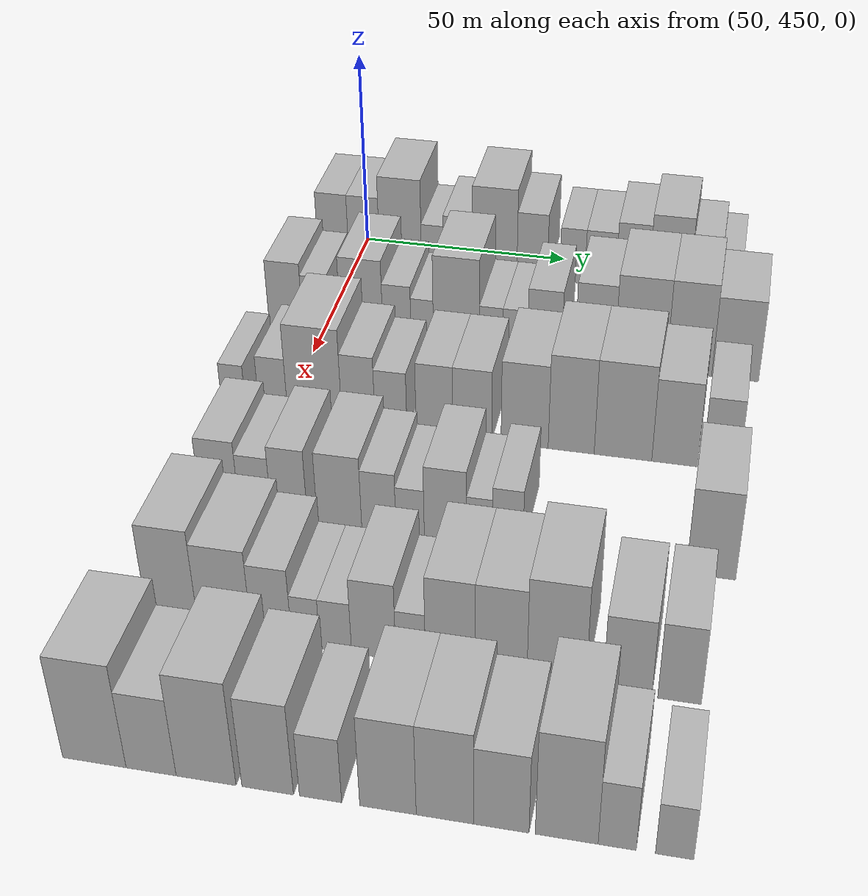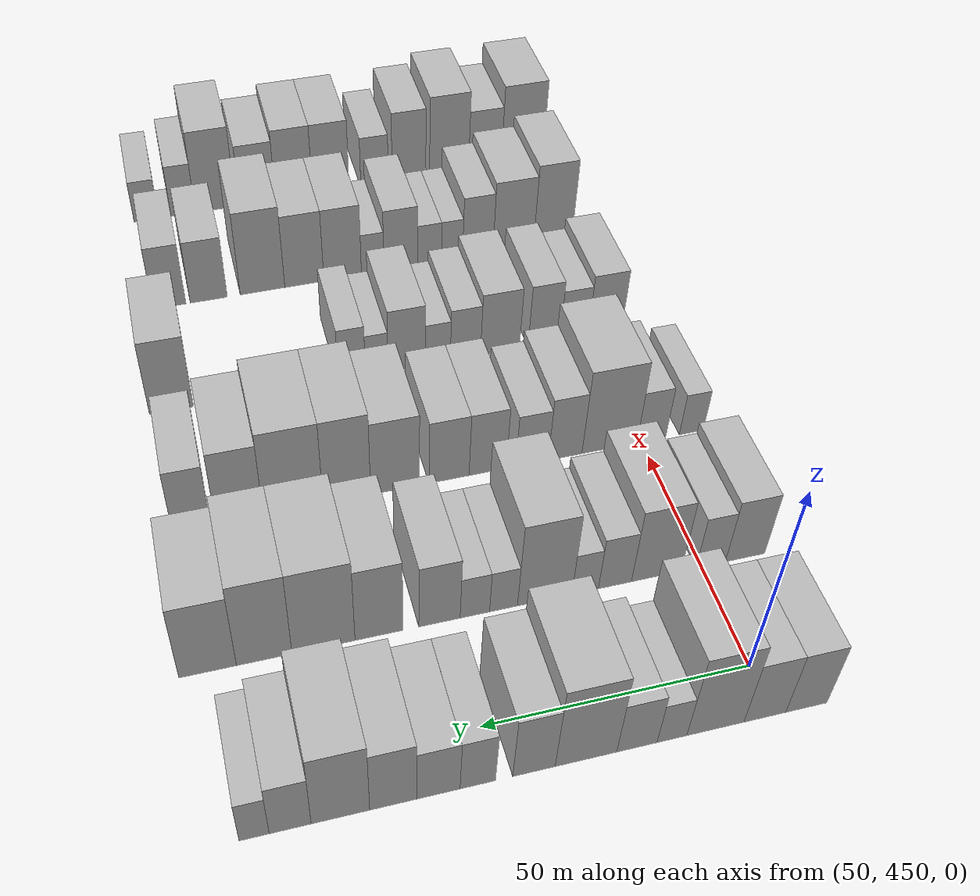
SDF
<sdf version="1.6">
 <world name="default">
  <model name="building_98">
   <static>1</static>
   <pose>50.0000 443.8086 0 0.000000 0.000000 0.000000</pose>
   <link name="link">
    <pose>0 0 9.00 0 0 0</pose>
    <collision name="collision"><geometry><box><size>20.0000 7.8256 18.0000</size></box></geometry></collision>
    <visual name="visual">
     <cast_shadows>0</cast_shadows>
     <geometry><box><size>20.0000 7.8256 18.0000</size></box></geometry>
     <material>
      <script>
       <uri>model://HANNAS_wall/materials/scripts</uri>
       <uri>model://HANNAS_wall/materials/textures</uri>
       <name>vrc/HANNAS_wall</name>
      </script>
     </material>
    </visual>
   </link>
  </model>
  <model name="building_99">
   <static>1</static>
   <pose>50.0000 451.6494 0 0.000000 0.000000 0.000000</pose>
   <link name="link">
    <pose>0 0 9.00 0 0 0</pose>
    <collision name="collision"><geometry><box><size>20.0000 7.8559 18.0000</size></box></geometry></collision>
    <visual name="visual">
     <cast_shadows>0</cast_shadows>
     <geometry><box><size>20.0000 7.8559 18.0000</size></box></geometry>
     <material>
      <script>
       <uri>model://HANNAS_wall/materials/scripts</uri>
       <uri>model://HANNAS_wall/materials/textures</uri>
       <name>vrc/HANNAS_wall</name>
      </script>
     </material>
    </visual>
   </link>
  </model>
  <model name="building_100">
   <static>1</static>
   <pose>50.0000 460.8512 0 0.000000 0.000000 0.000000</pose>
   <link name="link">
    <pose>0 0 12.00 0 0 0</pose>
    <collision name="collision"><geometry><box><size>20.0000 10.5478 24.0000</size></box></geometry></collision>
    <visual name="visual">
     <cast_shadows>0</cast_shadows>
     <geometry><box><size>20.0000 10.5478 24.0000</size></box></geometry>
     <material>
      <script>
       <uri>model://HANNAS_wall/materials/scripts</uri>
       <uri>model://HANNAS_wall/materials/textures</uri>
       <name>vrc/HANNAS_wall</name>
      </script>
     </material>
    </visual>
   </link>
  </model>
  <model name="building_101">
   <static>1</static>
   <pose>50.0000 468.8433 0 0.000000 0.000000 0.000000</pose>
   <link name="link">
    <pose>0 0 6.00 0 0 0</pose>
    <collision name="collision"><geometry><box><size>20.0000 5.4364 12.0000</size></box></geometry></collision>
    <visual name="visual">
     <cast_shadows>0</cast_shadows>
     <geometry><box><size>20.0000 5.4364 12.0000</size></box></geometry>
     <material>
      <script>
       <uri>model://HANNAS_wall/materials/scripts</uri>
       <uri>model://HANNAS_wall/materials/textures</uri>
       <name>vrc/HANNAS_wall</name>
      </script>
     </material>
    </visual>
   </link>
  </model>
  <model name="building_102">
   <static>1</static>
   <pose>50.0000 475.1970 0 0.000000 0.000000 0.000000</pose>
   <link name="link">
    <pose>0 0 7.50 0 0 0</pose>
    <collision name="collision"><geometry><box><size>20.0000 7.2709 15.0000</size></box></geometry></collision>
    <visual name="visual">
     <cast_shadows>0</cast_shadows>
     <geometry><box><size>20.0000 7.2709 15.0000</size></box></geometry>
     <material>
      <script>
       <uri>model://HANNAS_wall/materials/scripts</uri>
       <uri>model://HANNAS_wall/materials/textures</uri>
       <name>vrc/HANNAS_wall</name>
      </script>
     </material>
    </visual>
   </link>
  </model>
  <model name="building_103">
   <static>1</static>
   <pose>50.0000 484.3260 0 0.000000 0.000000 0.000000</pose>
   <link name="link">
    <pose>0 0 12.00 0 0 0</pose>
    <collision name="collision"><geometry><box><size>20.0000 10.9872 24.0000</size></box></geometry></collision>
    <visual name="visual">
     <cast_shadows>0</cast_shadows>
     <geometry><box><size>20.0000 10.9872 24.0000</size></box></geometry>
     <material>
      <script>
       <uri>model://HANNAS_wall/materials/scripts</uri>
       <uri>model://HANNAS_wall/materials/textures</uri>
       <name>vrc/HANNAS_wall</name>
      </script>
     </material>
    </visual>
   </link>
  </model>
  <model name="building_104">
   <static>1</static>
   <pose>50.0000 493.5575 0 0.000000 0.000000 0.000000</pose>
   <link name="link">
    <pose>0 0 9.00 0 0 0</pose>
    <collision name="collision"><geometry><box><size>20.0000 7.4757 18.0000</size></box></geometry></collision>
    <visual name="visual">
     <cast_shadows>0</cast_shadows>
     <geometry><box><size>20.0000 7.4757 18.0000</size></box></geometry>
     <material>
      <script>
       <uri>model://HANNAS_wall/materials/scripts</uri>
       <uri>model://HANNAS_wall/materials/textures</uri>
       <name>vrc/HANNAS_wall</name>
      </script>
     </material>
    </visual>
   </link>
  </model>
  <model name="building_105">
   <static>1</static>
   <pose>50.0000 503.3696 0 0.000000 0.000000 0.000000</pose>
   <link name="link">
    <pose>0 0 7.50 0 0 0</pose>
    <collision name="collision"><geometry><box><size>20.0000 6.1486 15.0000</size></box></geometry></collision>
    <visual name="visual">
     <cast_shadows>0</cast_shadows>
     <geometry><box><size>20.0000 6.1486 15.0000</size></box></geometry>
     <material>
      <script>
       <uri>model://HANNAS_wall/materials/scripts</uri>
       <uri>model://HANNAS_wall/materials/textures</uri>
       <name>vrc/HANNAS_wall</name>
      </script>
     </material>
    </visual>
   </link>
  </model>
  <model name="building_106">
   <static>1</static>
   <pose>50.0000 510.1743 0 0.000000 0.000000 0.000000</pose>
   <link name="link">
    <pose>0 0 7.50 0 0 0</pose>
    <collision name="collision"><geometry><box><size>20.0000 7.4607 15.0000</size></box></geometry></collision>
    <visual name="visual">
     <cast_shadows>0</cast_shadows>
     <geometry><box><size>20.0000 7.4607 15.0000</size></box></geometry>
     <material>
      <script>
       <uri>model://HANNAS_wall/materials/scripts</uri>
       <uri>model://HANNAS_wall/materials/textures</uri>
       <name>vrc/HANNAS_wall</name>
      </script>
     </material>
    </visual>
   </link>
  </model>
  <model name="building_107">
   <static>1</static>
   <pose>50.0000 517.8721 0 0.000000 0.000000 0.000000</pose>
   <link name="link">
    <pose>0 0 9.00 0 0 0</pose>
    <collision name="collision"><geometry><box><size>20.0000 7.9349 18.0000</size></box></geometry></collision>
    <visual name="visual">
     <cast_shadows>0</cast_shadows>
     <geometry><box><size>20.0000 7.9349 18.0000</size></box></geometry>
     <material>
      <script>
       <uri>model://HANNAS_wall/materials/scripts</uri>
       <uri>model://HANNAS_wall/materials/textures</uri>
       <name>vrc/HANNAS_wall</name>
      </script>
     </material>
    </visual>
   </link>
  </model>
  <model name="building_108">
   <static>1</static>
   <pose>50.0000 526.7325 0 0.000000 0.000000 0.000000</pose>
   <link name="link">
    <pose>0 0 10.50 0 0 0</pose>
    <collision name="collision"><geometry><box><size>20.0000 9.7859 21.0000</size></box></geometry></collision>
    <visual name="visual">
     <cast_shadows>0</cast_shadows>
     <geometry><box><size>20.0000 9.7859 21.0000</size></box></geometry>
     <material>
      <script>
       <uri>model://HANNAS_wall/materials/scripts</uri>
       <uri>model://HANNAS_wall/materials/textures</uri>
       <name>vrc/HANNAS_wall</name>
      </script>
     </material>
    </visual>
   </link>
  </model>
  <model name="building_109">
   <static>1</static>
   <pose>50.0000 535.0916 0 0.000000 0.000000 0.000000</pose>
   <link name="link">
    <pose>0 0 7.50 0 0 0</pose>
    <collision name="collision"><geometry><box><size>20.0000 6.9322 15.0000</size></box></geometry></collision>
    <visual name="visual">
     <cast_shadows>0</cast_shadows>
     <geometry><box><size>20.0000 6.9322 15.0000</size></box></geometry>
     <material>
      <script>
       <uri>model://HANNAS_wall/materials/scripts</uri>
       <uri>model://HANNAS_wall/materials/textures</uri>
       <name>vrc/HANNAS_wall</name>
      </script>
     </material>
    </visual>
   </link>
  </model>
  <model name="building_110">
   <static>1</static>
   <pose>50.0000 541.0189 0 0.000000 0.000000 0.000000</pose>
   <link name="link">
    <pose>0 0 6.00 0 0 0</pose>
    <collision name="collision"><geometry><box><size>20.0000 4.9223 12.0000</size></box></geometry></collision>
    <visual name="visual">
     <cast_shadows>0</cast_shadows>
     <geometry><box><size>20.0000 4.9223 12.0000</size></box></geometry>
     <material>
      <script>
       <uri>model://HANNAS_wall/materials/scripts</uri>
       <uri>model://HANNAS_wall/materials/textures</uri>
       <name>vrc/HANNAS_wall</name>
      </script>
     </material>
    </visual>
   </link>
  </model>
  <model name="building_215">
   <static>1</static>
   <pose>82.0000 441.1507 0 0.000000 0.000000 0.000000</pose>
   <link name="link">
    <pose>0 0 9.00 0 0 0</pose>
    <collision name="collision"><geometry><box><size>20.0000 8.0968 18.0000</size></box></geometry></collision>
    <visual name="visual">
     <cast_shadows>0</cast_shadows>
     <geometry><box><size>20.0000 8.0968 18.0000</size></box></geometry>
     <material>
      <script>
       <uri>model://HANNAS_wall/materials/scripts</uri>
       <uri>model://HANNAS_wall/materials/textures</uri>
       <name>vrc/HANNAS_wall</name>
      </script>
     </material>
    </visual>
   </link>
  </model>
  <model name="building_216">
   <static>1</static>
   <pose>82.0000 448.2064 0 0.000000 0.000000 0.000000</pose>
   <link name="link">
    <pose>0 0 7.50 0 0 0</pose>
    <collision name="collision"><geometry><box><size>20.0000 6.0147 15.0000</size></box></geometry></collision>
    <visual name="visual">
     <cast_shadows>0</cast_shadows>
     <geometry><box><size>20.0000 6.0147 15.0000</size></box></geometry>
     <material>
      <script>
       <uri>model://HANNAS_wall/materials/scripts</uri>
       <uri>model://HANNAS_wall/materials/textures</uri>
       <name>vrc/HANNAS_wall</name>
      </script>
     </material>
    </visual>
   </link>
  </model>
  <model name="building_217">
   <static>1</static>
   <pose>82.0000 459.2200 0 0.000000 0.000000 0.000000</pose>
   <link name="link">
    <pose>0 0 10.50 0 0 0</pose>
    <collision name="collision"><geometry><box><size>20.0000 10.0124 21.0000</size></box></geometry></collision>
    <visual name="visual">
     <cast_shadows>0</cast_shadows>
     <geometry><box><size>20.0000 10.0124 21.0000</size></box></geometry>
     <material>
      <script>
       <uri>model://HANNAS_wall/materials/scripts</uri>
       <uri>model://HANNAS_wall/materials/textures</uri>
       <name>vrc/HANNAS_wall</name>
      </script>
     </material>
    </visual>
   </link>
  </model>
  <model name="building_218">
   <static>1</static>
   <pose>82.0000 467.5190 0 0.000000 0.000000 0.000000</pose>
   <link name="link">
    <pose>0 0 7.50 0 0 0</pose>
    <collision name="collision"><geometry><box><size>20.0000 6.5856 15.0000</size></box></geometry></collision>
    <visual name="visual">
     <cast_shadows>0</cast_shadows>
     <geometry><box><size>20.0000 6.5856 15.0000</size></box></geometry>
     <material>
      <script>
       <uri>model://HANNAS_wall/materials/scripts</uri>
       <uri>model://HANNAS_wall/materials/textures</uri>
       <name>vrc/HANNAS_wall</name>
      </script>
     </material>
    </visual>
   </link>
  </model>
  <model name="building_219">
   <static>1</static>
   <pose>82.0000 473.4227 0 0.000000 0.000000 0.000000</pose>
   <link name="link">
    <pose>0 0 6.00 0 0 0</pose>
    <collision name="collision"><geometry><box><size>20.0000 5.2218 12.0000</size></box></geometry></collision>
    <visual name="visual">
     <cast_shadows>0</cast_shadows>
     <geometry><box><size>20.0000 5.2218 12.0000</size></box></geometry>
     <material>
      <script>
       <uri>model://HANNAS_wall/materials/scripts</uri>
       <uri>model://HANNAS_wall/materials/textures</uri>
       <name>vrc/HANNAS_wall</name>
      </script>
     </material>
    </visual>
   </link>
  </model>
  <model name="building_220">
   <static>1</static>
   <pose>82.0000 481.3415 0 0.000000 0.000000 0.000000</pose>
   <link name="link">
    <pose>0 0 12.00 0 0 0</pose>
    <collision name="collision"><geometry><box><size>20.0000 10.6158 24.0000</size></box></geometry></collision>
    <visual name="visual">
     <cast_shadows>0</cast_shadows>
     <geometry><box><size>20.0000 10.6158 24.0000</size></box></geometry>
     <material>
      <script>
       <uri>model://HANNAS_wall/materials/scripts</uri>
       <uri>model://HANNAS_wall/materials/textures</uri>
       <name>vrc/HANNAS_wall</name>
      </script>
     </material>
    </visual>
   </link>
  </model>
  <model name="building_221">
   <static>1</static>
   <pose>82.0000 489.3402 0 0.000000 0.000000 0.000000</pose>
   <link name="link">
    <pose>0 0 6.00 0 0 0</pose>
    <collision name="collision"><geometry><box><size>20.0000 5.3815 12.0000</size></box></geometry></collision>
    <visual name="visual">
     <cast_shadows>0</cast_shadows>
     <geometry><box><size>20.0000 5.3815 12.0000</size></box></geometry>
     <material>
      <script>
       <uri>model://HANNAS_wall/materials/scripts</uri>
       <uri>model://HANNAS_wall/materials/textures</uri>
       <name>vrc/HANNAS_wall</name>
      </script>
     </material>
    </visual>
   </link>
  </model>
  <model name="building_222">
   <static>1</static>
   <pose>82.0000 494.8561 0 0.000000 0.000000 0.000000</pose>
   <link name="link">
    <pose>0 0 6.00 0 0 0</pose>
    <collision name="collision"><geometry><box><size>20.0000 5.6503 12.0000</size></box></geometry></collision>
    <visual name="visual">
     <cast_shadows>0</cast_shadows>
     <geometry><box><size>20.0000 5.6503 12.0000</size></box></geometry>
     <material>
      <script>
       <uri>model://HANNAS_wall/materials/scripts</uri>
       <uri>model://HANNAS_wall/materials/textures</uri>
       <name>vrc/HANNAS_wall</name>
      </script>
     </material>
    </visual>
   </link>
  </model>
  <model name="building_223">
   <static>1</static>
   <pose>82.0000 501.5954 0 0.000000 0.000000 0.000000</pose>
   <link name="link">
    <pose>0 0 9.00 0 0 0</pose>
    <collision name="collision"><geometry><box><size>20.0000 7.8283 18.0000</size></box></geometry></collision>
    <visual name="visual">
     <cast_shadows>0</cast_shadows>
     <geometry><box><size>20.0000 7.8283 18.0000</size></box></geometry>
     <material>
      <script>
       <uri>model://HANNAS_wall/materials/scripts</uri>
       <uri>model://HANNAS_wall/materials/textures</uri>
       <name>vrc/HANNAS_wall</name>
      </script>
     </material>
    </visual>
   </link>
  </model>
  <model name="building_224">
   <static>1</static>
   <pose>82.0000 512.9744 0 0.000000 0.000000 0.000000</pose>
   <link name="link">
    <pose>0 0 10.50 0 0 0</pose>
    <collision name="collision"><geometry><box><size>20.0000 8.9297 21.0000</size></box></geometry></collision>
    <visual name="visual">
     <cast_shadows>0</cast_shadows>
     <geometry><box><size>20.0000 8.9297 21.0000</size></box></geometry>
     <material>
      <script>
       <uri>model://HANNAS_wall/materials/scripts</uri>
       <uri>model://HANNAS_wall/materials/textures</uri>
       <name>vrc/HANNAS_wall</name>
      </script>
     </material>
    </visual>
   </link>
  </model>
  <model name="building_225">
   <static>1</static>
   <pose>82.0000 523.2444 0 0.000000 0.000000 0.000000</pose>
   <link name="link">
    <pose>0 0 12.00 0 0 0</pose>
    <collision name="collision"><geometry><box><size>20.0000 11.6103 24.0000</size></box></geometry></collision>
    <visual name="visual">
     <cast_shadows>0</cast_shadows>
     <geometry><box><size>20.0000 11.6103 24.0000</size></box></geometry>
     <material>
      <script>
       <uri>model://HANNAS_wall/materials/scripts</uri>
       <uri>model://HANNAS_wall/materials/textures</uri>
       <name>vrc/HANNAS_wall</name>
      </script>
     </material>
    </visual>
   </link>
  </model>
  <model name="building_226">
   <static>1</static>
   <pose>82.0000 534.0871 0 0.000000 0.000000 0.000000</pose>
   <link name="link">
    <pose>0 0 12.00 0 0 0</pose>
    <collision name="collision"><geometry><box><size>20.0000 10.0751 24.0000</size></box></geometry></collision>
    <visual name="visual">
     <cast_shadows>0</cast_shadows>
     <geometry><box><size>20.0000 10.0751 24.0000</size></box></geometry>
     <material>
      <script>
       <uri>model://HANNAS_wall/materials/scripts</uri>
       <uri>model://HANNAS_wall/materials/textures</uri>
       <name>vrc/HANNAS_wall</name>
      </script>
     </material>
    </visual>
   </link>
  </model>
  <model name="building_227">
   <static>1</static>
   <pose>82.0000 544.2729 0 0.000000 0.000000 0.000000</pose>
   <link name="link">
    <pose>0 0 10.50 0 0 0</pose>
    <collision name="collision"><geometry><box><size>20.0000 10.2964 21.0000</size></box></geometry></collision>
    <visual name="visual">
     <cast_shadows>0</cast_shadows>
     <geometry><box><size>20.0000 10.2964 21.0000</size></box></geometry>
     <material>
      <script>
       <uri>model://HANNAS_wall/materials/scripts</uri>
       <uri>model://HANNAS_wall/materials/textures</uri>
       <name>vrc/HANNAS_wall</name>
      </script>
     </material>
    </visual>
   </link>
  </model>
  <model name="building_338">
   <static>1</static>
   <pose>114.0000 439.0265 0 0.000000 0.000000 0.000000</pose>
   <link name="link">
    <pose>0 0 6.00 0 0 0</pose>
    <collision name="collision"><geometry><box><size>20.0000 5.3566 12.0000</size></box></geometry></collision>
    <visual name="visual">
     <cast_shadows>0</cast_shadows>
     <geometry><box><size>20.0000 5.3566 12.0000</size></box></geometry>
     <material>
      <script>
       <uri>model://HANNAS_wall/materials/scripts</uri>
       <uri>model://HANNAS_wall/materials/textures</uri>
       <name>vrc/HANNAS_wall</name>
      </script>
     </material>
    </visual>
   </link>
  </model>
  <model name="building_339">
   <static>1</static>
   <pose>114.0000 447.8765 0 0.000000 0.000000 0.000000</pose>
   <link name="link">
    <pose>0 0 7.50 0 0 0</pose>
    <collision name="collision"><geometry><box><size>20.0000 6.3434 15.0000</size></box></geometry></collision>
    <visual name="visual">
     <cast_shadows>0</cast_shadows>
     <geometry><box><size>20.0000 6.3434 15.0000</size></box></geometry>
     <material>
      <script>
       <uri>model://HANNAS_wall/materials/scripts</uri>
       <uri>model://HANNAS_wall/materials/textures</uri>
       <name>vrc/HANNAS_wall</name>
      </script>
     </material>
    </visual>
   </link>
  </model>
  <model name="building_340">
   <static>1</static>
   <pose>114.0000 457.0383 0 0.000000 0.000000 0.000000</pose>
   <link name="link">
    <pose>0 0 12.00 0 0 0</pose>
    <collision name="collision"><geometry><box><size>20.0000 11.9803 24.0000</size></box></geometry></collision>
    <visual name="visual">
     <cast_shadows>0</cast_shadows>
     <geometry><box><size>20.0000 11.9803 24.0000</size></box></geometry>
     <material>
      <script>
       <uri>model://HANNAS_wall/materials/scripts</uri>
       <uri>model://HANNAS_wall/materials/textures</uri>
       <name>vrc/HANNAS_wall</name>
      </script>
     </material>
    </visual>
   </link>
  </model>
  <model name="building_341">
   <static>1</static>
   <pose>114.0000 466.6555 0 0.000000 0.000000 0.000000</pose>
   <link name="link">
    <pose>0 0 9.00 0 0 0</pose>
    <collision name="collision"><geometry><box><size>20.0000 7.2541 18.0000</size></box></geometry></collision>
    <visual name="visual">
     <cast_shadows>0</cast_shadows>
     <geometry><box><size>20.0000 7.2541 18.0000</size></box></geometry>
     <material>
      <script>
       <uri>model://HANNAS_wall/materials/scripts</uri>
       <uri>model://HANNAS_wall/materials/textures</uri>
       <name>vrc/HANNAS_wall</name>
      </script>
     </material>
    </visual>
   </link>
  </model>
  <model name="building_342">
   <static>1</static>
   <pose>114.0000 473.7471 0 0.000000 0.000000 0.000000</pose>
   <link name="link">
    <pose>0 0 7.50 0 0 0</pose>
    <collision name="collision"><geometry><box><size>20.0000 6.9291 15.0000</size></box></geometry></collision>
    <visual name="visual">
     <cast_shadows>0</cast_shadows>
     <geometry><box><size>20.0000 6.9291 15.0000</size></box></geometry>
     <material>
      <script>
       <uri>model://HANNAS_wall/materials/scripts</uri>
       <uri>model://HANNAS_wall/materials/textures</uri>
       <name>vrc/HANNAS_wall</name>
      </script>
     </material>
    </visual>
   </link>
  </model>
  <model name="building_343">
   <static>1</static>
   <pose>114.0000 483.1287 0 0.000000 0.000000 0.000000</pose>
   <link name="link">
    <pose>0 0 9.00 0 0 0</pose>
    <collision name="collision"><geometry><box><size>20.0000 7.8341 18.0000</size></box></geometry></collision>
    <visual name="visual">
     <cast_shadows>0</cast_shadows>
     <geometry><box><size>20.0000 7.8341 18.0000</size></box></geometry>
     <material>
      <script>
       <uri>model://HANNAS_wall/materials/scripts</uri>
       <uri>model://HANNAS_wall/materials/textures</uri>
       <name>vrc/HANNAS_wall</name>
      </script>
     </material>
    </visual>
   </link>
  </model>
  <model name="building_344">
   <static>1</static>
   <pose>114.0000 491.2269 0 0.000000 0.000000 0.000000</pose>
   <link name="link">
    <pose>0 0 9.00 0 0 0</pose>
    <collision name="collision"><geometry><box><size>20.0000 8.3623 18.0000</size></box></geometry></collision>
    <visual name="visual">
     <cast_shadows>0</cast_shadows>
     <geometry><box><size>20.0000 8.3623 18.0000</size></box></geometry>
     <material>
      <script>
       <uri>model://HANNAS_wall/materials/scripts</uri>
       <uri>model://HANNAS_wall/materials/textures</uri>
       <name>vrc/HANNAS_wall</name>
      </script>
     </material>
    </visual>
   </link>
  </model>
  <model name="building_345">
   <static>1</static>
   <pose>114.0000 502.3993 0 0.000000 0.000000 0.000000</pose>
   <link name="link">
    <pose>0 0 10.50 0 0 0</pose>
    <collision name="collision"><geometry><box><size>20.0000 9.9825 21.0000</size></box></geometry></collision>
    <visual name="visual">
     <cast_shadows>0</cast_shadows>
     <geometry><box><size>20.0000 9.9825 21.0000</size></box></geometry>
     <material>
      <script>
       <uri>model://HANNAS_wall/materials/scripts</uri>
       <uri>model://HANNAS_wall/materials/textures</uri>
       <name>vrc/HANNAS_wall</name>
      </script>
     </material>
    </visual>
   </link>
  </model>
  <model name="building_346">
   <static>1</static>
   <pose>114.0000 512.2254 0 0.000000 0.000000 0.000000</pose>
   <link name="link">
    <pose>0 0 12.00 0 0 0</pose>
    <collision name="collision"><geometry><box><size>20.0000 9.6696 24.0000</size></box></geometry></collision>
    <visual name="visual">
     <cast_shadows>0</cast_shadows>
     <geometry><box><size>20.0000 9.6696 24.0000</size></box></geometry>
     <material>
      <script>
       <uri>model://HANNAS_wall/materials/scripts</uri>
       <uri>model://HANNAS_wall/materials/textures</uri>
       <name>vrc/HANNAS_wall</name>
      </script>
     </material>
    </visual>
   </link>
  </model>
  <model name="building_347">
   <static>1</static>
   <pose>114.0000 523.0419 0 0.000000 0.000000 0.000000</pose>
   <link name="link">
    <pose>0 0 12.00 0 0 0</pose>
    <collision name="collision"><geometry><box><size>20.0000 11.9636 24.0000</size></box></geometry></collision>
    <visual name="visual">
     <cast_shadows>0</cast_shadows>
     <geometry><box><size>20.0000 11.9636 24.0000</size></box></geometry>
     <material>
      <script>
       <uri>model://HANNAS_wall/materials/scripts</uri>
       <uri>model://HANNAS_wall/materials/textures</uri>
       <name>vrc/HANNAS_wall</name>
      </script>
     </material>
    </visual>
   </link>
  </model>
  <model name="building_348">
   <static>1</static>
   <pose>114.0000 533.7197 0 0.000000 0.000000 0.000000</pose>
   <link name="link">
    <pose>0 0 10.50 0 0 0</pose>
    <collision name="collision"><geometry><box><size>20.0000 9.3919 21.0000</size></box></geometry></collision>
    <visual name="visual">
     <cast_shadows>0</cast_shadows>
     <geometry><box><size>20.0000 9.3919 21.0000</size></box></geometry>
     <material>
      <script>
       <uri>model://HANNAS_wall/materials/scripts</uri>
       <uri>model://HANNAS_wall/materials/textures</uri>
       <name>vrc/HANNAS_wall</name>
      </script>
     </material>
    </visual>
   </link>
  </model>
  <model name="building_349">
   <static>1</static>
   <pose>114.0000 543.1421 0 0.000000 0.000000 0.000000</pose>
   <link name="link">
    <pose>0 0 9.00 0 0 0</pose>
    <collision name="collision"><geometry><box><size>20.0000 7.4528 18.0000</size></box></geometry></collision>
    <visual name="visual">
     <cast_shadows>0</cast_shadows>
     <geometry><box><size>20.0000 7.4528 18.0000</size></box></geometry>
     <material>
      <script>
       <uri>model://HANNAS_wall/materials/scripts</uri>
       <uri>model://HANNAS_wall/materials/textures</uri>
       <name>vrc/HANNAS_wall</name>
      </script>
     </material>
    </visual>
   </link>
  </model>
  <model name="building_456">
   <static>1</static>
   <pose>146.0000 446.6152 0 0.000000 0.000000 0.000000</pose>
   <link name="link">
    <pose>0 0 9.00 0 0 0</pose>
    <collision name="collision"><geometry><box><size>20.0000 8.0073 18.0000</size></box></geometry></collision>
    <visual name="visual">
     <cast_shadows>0</cast_shadows>
     <geometry><box><size>20.0000 8.0073 18.0000</size></box></geometry>
     <material>
      <script>
       <uri>model://HANNAS_wall/materials/scripts</uri>
       <uri>model://HANNAS_wall/materials/textures</uri>
       <name>vrc/HANNAS_wall</name>
      </script>
     </material>
    </visual>
   </link>
  </model>
  <model name="building_457">
   <static>1</static>
   <pose>146.0000 453.9257 0 0.000000 0.000000 0.000000</pose>
   <link name="link">
    <pose>0 0 7.50 0 0 0</pose>
    <collision name="collision"><geometry><box><size>20.0000 6.6137 15.0000</size></box></geometry></collision>
    <visual name="visual">
     <cast_shadows>0</cast_shadows>
     <geometry><box><size>20.0000 6.6137 15.0000</size></box></geometry>
     <material>
      <script>
       <uri>model://HANNAS_wall/materials/scripts</uri>
       <uri>model://HANNAS_wall/materials/textures</uri>
       <name>vrc/HANNAS_wall</name>
      </script>
     </material>
    </visual>
   </link>
  </model>
  <model name="building_458">
   <static>1</static>
   <pose>146.0000 460.9012 0 0.000000 0.000000 0.000000</pose>
   <link name="link">
    <pose>0 0 9.00 0 0 0</pose>
    <collision name="collision"><geometry><box><size>20.0000 7.3374 18.0000</size></box></geometry></collision>
    <visual name="visual">
     <cast_shadows>0</cast_shadows>
     <geometry><box><size>20.0000 7.3374 18.0000</size></box></geometry>
     <material>
      <script>
       <uri>model://HANNAS_wall/materials/scripts</uri>
       <uri>model://HANNAS_wall/materials/textures</uri>
       <name>vrc/HANNAS_wall</name>
      </script>
     </material>
    </visual>
   </link>
  </model>
  <model name="building_459">
   <static>1</static>
   <pose>146.0000 471.0535 0 0.000000 0.000000 0.000000</pose>
   <link name="link">
    <pose>0 0 9.00 0 0 0</pose>
    <collision name="collision"><geometry><box><size>20.0000 8.9672 18.0000</size></box></geometry></collision>
    <visual name="visual">
     <cast_shadows>0</cast_shadows>
     <geometry><box><size>20.0000 8.9672 18.0000</size></box></geometry>
     <material>
      <script>
       <uri>model://HANNAS_wall/materials/scripts</uri>
       <uri>model://HANNAS_wall/materials/textures</uri>
       <name>vrc/HANNAS_wall</name>
      </script>
     </material>
    </visual>
   </link>
  </model>
  <model name="building_460">
   <static>1</static>
   <pose>146.0000 478.9670 0 0.000000 0.000000 0.000000</pose>
   <link name="link">
    <pose>0 0 7.50 0 0 0</pose>
    <collision name="collision"><geometry><box><size>20.0000 6.8597 15.0000</size></box></geometry></collision>
    <visual name="visual">
     <cast_shadows>0</cast_shadows>
     <geometry><box><size>20.0000 6.8597 15.0000</size></box></geometry>
     <material>
      <script>
       <uri>model://HANNAS_wall/materials/scripts</uri>
       <uri>model://HANNAS_wall/materials/textures</uri>
       <name>vrc/HANNAS_wall</name>
      </script>
     </material>
    </visual>
   </link>
  </model>
  <model name="building_461">
   <static>1</static>
   <pose>146.0000 485.2193 0 0.000000 0.000000 0.000000</pose>
   <link name="link">
    <pose>0 0 6.00 0 0 0</pose>
    <collision name="collision"><geometry><box><size>20.0000 5.6449 12.0000</size></box></geometry></collision>
    <visual name="visual">
     <cast_shadows>0</cast_shadows>
     <geometry><box><size>20.0000 5.6449 12.0000</size></box></geometry>
     <material>
      <script>
       <uri>model://HANNAS_wall/materials/scripts</uri>
       <uri>model://HANNAS_wall/materials/textures</uri>
       <name>vrc/HANNAS_wall</name>
      </script>
     </material>
    </visual>
   </link>
  </model>
  <model name="building_462">
   <static>1</static>
   <pose>146.0000 492.2185 0 0.000000 0.000000 0.000000</pose>
   <link name="link">
    <pose>0 0 9.00 0 0 0</pose>
    <collision name="collision"><geometry><box><size>20.0000 8.3535 18.0000</size></box></geometry></collision>
    <visual name="visual">
     <cast_shadows>0</cast_shadows>
     <geometry><box><size>20.0000 8.3535 18.0000</size></box></geometry>
     <material>
      <script>
       <uri>model://HANNAS_wall/materials/scripts</uri>
       <uri>model://HANNAS_wall/materials/textures</uri>
       <name>vrc/HANNAS_wall</name>
      </script>
     </material>
    </visual>
   </link>
  </model>
  <model name="building_463">
   <static>1</static>
   <pose>146.0000 498.9084 0 0.000000 0.000000 0.000000</pose>
   <link name="link">
    <pose>0 0 6.00 0 0 0</pose>
    <collision name="collision"><geometry><box><size>20.0000 5.0262 12.0000</size></box></geometry></collision>
    <visual name="visual">
     <cast_shadows>0</cast_shadows>
     <geometry><box><size>20.0000 5.0262 12.0000</size></box></geometry>
     <material>
      <script>
       <uri>model://HANNAS_wall/materials/scripts</uri>
       <uri>model://HANNAS_wall/materials/textures</uri>
       <name>vrc/HANNAS_wall</name>
      </script>
     </material>
    </visual>
   </link>
  </model>
  <model name="building_464">
   <static>1</static>
   <pose>146.0000 504.4258 0 0.000000 0.000000 0.000000</pose>
   <link name="link">
    <pose>0 0 7.50 0 0 0</pose>
    <collision name="collision"><geometry><box><size>20.0000 6.0087 15.0000</size></box></geometry></collision>
    <visual name="visual">
     <cast_shadows>0</cast_shadows>
     <geometry><box><size>20.0000 6.0087 15.0000</size></box></geometry>
     <material>
      <script>
       <uri>model://HANNAS_wall/materials/scripts</uri>
       <uri>model://HANNAS_wall/materials/textures</uri>
       <name>vrc/HANNAS_wall</name>
      </script>
     </material>
    </visual>
   </link>
  </model>
  <model name="building_465">
   <static>1</static>
   <pose>146.0000 543.3759 0 0.000000 0.000000 0.000000</pose>
   <link name="link">
    <pose>0 0 10.50 0 0 0</pose>
    <collision name="collision"><geometry><box><size>20.0000 9.2972 21.0000</size></box></geometry></collision>
    <visual name="visual">
     <cast_shadows>0</cast_shadows>
     <geometry><box><size>20.0000 9.2972 21.0000</size></box></geometry>
     <material>
      <script>
       <uri>model://HANNAS_wall/materials/scripts</uri>
       <uri>model://HANNAS_wall/materials/textures</uri>
       <name>vrc/HANNAS_wall</name>
      </script>
     </material>
    </visual>
   </link>
  </model>
  <model name="building_577">
   <static>1</static>
   <pose>178.0000 448.4085 0 0.000000 0.000000 0.000000</pose>
   <link name="link">
    <pose>0 0 12.00 0 0 0</pose>
    <collision name="collision"><geometry><box><size>20.0000 9.6347 24.0000</size></box></geometry></collision>
    <visual name="visual">
     <cast_shadows>0</cast_shadows>
     <geometry><box><size>20.0000 9.6347 24.0000</size></box></geometry>
     <material>
      <script>
       <uri>model://HANNAS_wall/materials/scripts</uri>
       <uri>model://HANNAS_wall/materials/textures</uri>
       <name>vrc/HANNAS_wall</name>
      </script>
     </material>
    </visual>
   </link>
  </model>
  <model name="building_578">
   <static>1</static>
   <pose>178.0000 458.2632 0 0.000000 0.000000 0.000000</pose>
   <link name="link">
    <pose>0 0 10.50 0 0 0</pose>
    <collision name="collision"><geometry><box><size>20.0000 10.0746 21.0000</size></box></geometry></collision>
    <visual name="visual">
     <cast_shadows>0</cast_shadows>
     <geometry><box><size>20.0000 10.0746 21.0000</size></box></geometry>
     <material>
      <script>
       <uri>model://HANNAS_wall/materials/scripts</uri>
       <uri>model://HANNAS_wall/materials/textures</uri>
       <name>vrc/HANNAS_wall</name>
      </script>
     </material>
    </visual>
   </link>
  </model>
  <model name="building_579">
   <static>1</static>
   <pose>178.0000 467.0597 0 0.000000 0.000000 0.000000</pose>
   <link name="link">
    <pose>0 0 9.00 0 0 0</pose>
    <collision name="collision"><geometry><box><size>20.0000 7.5184 18.0000</size></box></geometry></collision>
    <visual name="visual">
     <cast_shadows>0</cast_shadows>
     <geometry><box><size>20.0000 7.5184 18.0000</size></box></geometry>
     <material>
      <script>
       <uri>model://HANNAS_wall/materials/scripts</uri>
       <uri>model://HANNAS_wall/materials/textures</uri>
       <name>vrc/HANNAS_wall</name>
      </script>
     </material>
    </visual>
   </link>
  </model>
  <model name="building_580">
   <static>1</static>
   <pose>178.0000 473.4149 0 0.000000 0.000000 0.000000</pose>
   <link name="link">
    <pose>0 0 6.00 0 0 0</pose>
    <collision name="collision"><geometry><box><size>20.0000 5.1921 12.0000</size></box></geometry></collision>
    <visual name="visual">
     <cast_shadows>0</cast_shadows>
     <geometry><box><size>20.0000 5.1921 12.0000</size></box></geometry>
     <material>
      <script>
       <uri>model://HANNAS_wall/materials/scripts</uri>
       <uri>model://HANNAS_wall/materials/textures</uri>
       <name>vrc/HANNAS_wall</name>
      </script>
     </material>
    </visual>
   </link>
  </model>
  <model name="building_581">
   <static>1</static>
   <pose>178.0000 478.9214 0 0.000000 0.000000 0.000000</pose>
   <link name="link">
    <pose>0 0 6.00 0 0 0</pose>
    <collision name="collision"><geometry><box><size>20.0000 5.8209 12.0000</size></box></geometry></collision>
    <visual name="visual">
     <cast_shadows>0</cast_shadows>
     <geometry><box><size>20.0000 5.8209 12.0000</size></box></geometry>
     <material>
      <script>
       <uri>model://HANNAS_wall/materials/scripts</uri>
       <uri>model://HANNAS_wall/materials/textures</uri>
       <name>vrc/HANNAS_wall</name>
      </script>
     </material>
    </visual>
   </link>
  </model>
  <model name="building_582">
   <static>1</static>
   <pose>178.0000 485.8901 0 0.000000 0.000000 0.000000</pose>
   <link name="link">
    <pose>0 0 9.00 0 0 0</pose>
    <collision name="collision"><geometry><box><size>20.0000 8.1165 18.0000</size></box></geometry></collision>
    <visual name="visual">
     <cast_shadows>0</cast_shadows>
     <geometry><box><size>20.0000 8.1165 18.0000</size></box></geometry>
     <material>
      <script>
       <uri>model://HANNAS_wall/materials/scripts</uri>
       <uri>model://HANNAS_wall/materials/textures</uri>
       <name>vrc/HANNAS_wall</name>
      </script>
     </material>
    </visual>
   </link>
  </model>
  <model name="building_583">
   <static>1</static>
   <pose>178.0000 492.6400 0 0.000000 0.000000 0.000000</pose>
   <link name="link">
    <pose>0 0 6.00 0 0 0</pose>
    <collision name="collision"><geometry><box><size>20.0000 5.3833 12.0000</size></box></geometry></collision>
    <visual name="visual">
     <cast_shadows>0</cast_shadows>
     <geometry><box><size>20.0000 5.3833 12.0000</size></box></geometry>
     <material>
      <script>
       <uri>model://HANNAS_wall/materials/scripts</uri>
       <uri>model://HANNAS_wall/materials/textures</uri>
       <name>vrc/HANNAS_wall</name>
      </script>
     </material>
    </visual>
   </link>
  </model>
  <model name="building_584">
   <static>1</static>
   <pose>178.0000 499.8014 0 0.000000 0.000000 0.000000</pose>
   <link name="link">
    <pose>0 0 10.50 0 0 0</pose>
    <collision name="collision"><geometry><box><size>20.0000 8.9394 21.0000</size></box></geometry></collision>
    <visual name="visual">
     <cast_shadows>0</cast_shadows>
     <geometry><box><size>20.0000 8.9394 21.0000</size></box></geometry>
     <material>
      <script>
       <uri>model://HANNAS_wall/materials/scripts</uri>
       <uri>model://HANNAS_wall/materials/textures</uri>
       <name>vrc/HANNAS_wall</name>
      </script>
     </material>
    </visual>
   </link>
  </model>
  <model name="building_585">
   <static>1</static>
   <pose>178.0000 508.8850 0 0.000000 0.000000 0.000000</pose>
   <link name="link">
    <pose>0 0 10.50 0 0 0</pose>
    <collision name="collision"><geometry><box><size>20.0000 9.2278 21.0000</size></box></geometry></collision>
    <visual name="visual">
     <cast_shadows>0</cast_shadows>
     <geometry><box><size>20.0000 9.2278 21.0000</size></box></geometry>
     <material>
      <script>
       <uri>model://HANNAS_wall/materials/scripts</uri>
       <uri>model://HANNAS_wall/materials/textures</uri>
       <name>vrc/HANNAS_wall</name>
      </script>
     </material>
    </visual>
   </link>
  </model>
  <model name="building_586">
   <static>1</static>
   <pose>178.0000 518.7043 0 0.000000 0.000000 0.000000</pose>
   <link name="link">
    <pose>0 0 12.00 0 0 0</pose>
    <collision name="collision"><geometry><box><size>20.0000 10.4108 24.0000</size></box></geometry></collision>
    <visual name="visual">
     <cast_shadows>0</cast_shadows>
     <geometry><box><size>20.0000 10.4108 24.0000</size></box></geometry>
     <material>
      <script>
       <uri>model://HANNAS_wall/materials/scripts</uri>
       <uri>model://HANNAS_wall/materials/textures</uri>
       <name>vrc/HANNAS_wall</name>
      </script>
     </material>
    </visual>
   </link>
  </model>
  <model name="building_587">
   <static>1</static>
   <pose>178.0000 531.1703 0 0.000000 0.000000 0.000000</pose>
   <link name="link">
    <pose>0 0 9.00 0 0 0</pose>
    <collision name="collision"><geometry><box><size>20.0000 8.5211 18.0000</size></box></geometry></collision>
    <visual name="visual">
     <cast_shadows>0</cast_shadows>
     <geometry><box><size>20.0000 8.5211 18.0000</size></box></geometry>
     <material>
      <script>
       <uri>model://HANNAS_wall/materials/scripts</uri>
       <uri>model://HANNAS_wall/materials/textures</uri>
       <name>vrc/HANNAS_wall</name>
      </script>
     </material>
    </visual>
   </link>
  </model>
  <model name="building_588">
   <static>1</static>
   <pose>178.0000 540.1954 0 0.000000 0.000000 0.000000</pose>
   <link name="link">
    <pose>0 0 9.00 0 0 0</pose>
    <collision name="collision"><geometry><box><size>20.0000 7.5291 18.0000</size></box></geometry></collision>
    <visual name="visual">
     <cast_shadows>0</cast_shadows>
     <geometry><box><size>20.0000 7.5291 18.0000</size></box></geometry>
     <material>
      <script>
       <uri>model://HANNAS_wall/materials/scripts</uri>
       <uri>model://HANNAS_wall/materials/textures</uri>
       <name>vrc/HANNAS_wall</name>
      </script>
     </material>
    </visual>
   </link>
  </model>
  <model name="building_700">
   <static>1</static>
   <pose>210.0000 446.1875 0 0.000000 0.000000 0.000000</pose>
   <link name="link">
    <pose>0 0 12.00 0 0 0</pose>
    <collision name="collision"><geometry><box><size>20.0000 11.1285 24.0000</size></box></geometry></collision>
    <visual name="visual">
     <cast_shadows>0</cast_shadows>
     <geometry><box><size>20.0000 11.1285 24.0000</size></box></geometry>
     <material>
      <script>
       <uri>model://HANNAS_wall/materials/scripts</uri>
       <uri>model://HANNAS_wall/materials/textures</uri>
       <name>vrc/HANNAS_wall</name>
      </script>
     </material>
    </visual>
   </link>
  </model>
  <model name="building_701">
   <static>1</static>
   <pose>210.0000 456.0909 0 0.000000 0.000000 0.000000</pose>
   <link name="link">
    <pose>0 0 9.00 0 0 0</pose>
    <collision name="collision"><geometry><box><size>20.0000 8.6783 18.0000</size></box></geometry></collision>
    <visual name="visual">
     <cast_shadows>0</cast_shadows>
     <geometry><box><size>20.0000 8.6783 18.0000</size></box></geometry>
     <material>
      <script>
       <uri>model://HANNAS_wall/materials/scripts</uri>
       <uri>model://HANNAS_wall/materials/textures</uri>
       <name>vrc/HANNAS_wall</name>
      </script>
     </material>
    </visual>
   </link>
  </model>
  <model name="building_702">
   <static>1</static>
   <pose>210.0000 465.5672 0 0.000000 0.000000 0.000000</pose>
   <link name="link">
    <pose>0 0 12.00 0 0 0</pose>
    <collision name="collision"><geometry><box><size>20.0000 10.2743 24.0000</size></box></geometry></collision>
    <visual name="visual">
     <cast_shadows>0</cast_shadows>
     <geometry><box><size>20.0000 10.2743 24.0000</size></box></geometry>
     <material>
      <script>
       <uri>model://HANNAS_wall/materials/scripts</uri>
       <uri>model://HANNAS_wall/materials/textures</uri>
       <name>vrc/HANNAS_wall</name>
      </script>
     </material>
    </visual>
   </link>
  </model>
  <model name="building_703">
   <static>1</static>
   <pose>210.0000 476.0727 0 0.000000 0.000000 0.000000</pose>
   <link name="link">
    <pose>0 0 10.50 0 0 0</pose>
    <collision name="collision"><geometry><box><size>20.0000 8.7366 21.0000</size></box></geometry></collision>
    <visual name="visual">
     <cast_shadows>0</cast_shadows>
     <geometry><box><size>20.0000 8.7366 21.0000</size></box></geometry>
     <material>
      <script>
       <uri>model://HANNAS_wall/materials/scripts</uri>
       <uri>model://HANNAS_wall/materials/textures</uri>
       <name>vrc/HANNAS_wall</name>
      </script>
     </material>
    </visual>
   </link>
  </model>
  <model name="building_704">
   <static>1</static>
   <pose>210.0000 484.9792 0 0.000000 0.000000 0.000000</pose>
   <link name="link">
    <pose>0 0 7.50 0 0 0</pose>
    <collision name="collision"><geometry><box><size>20.0000 7.0766 15.0000</size></box></geometry></collision>
    <visual name="visual">
     <cast_shadows>0</cast_shadows>
     <geometry><box><size>20.0000 7.0766 15.0000</size></box></geometry>
     <material>
      <script>
       <uri>model://HANNAS_wall/materials/scripts</uri>
       <uri>model://HANNAS_wall/materials/textures</uri>
       <name>vrc/HANNAS_wall</name>
      </script>
     </material>
    </visual>
   </link>
  </model>
  <model name="building_705">
   <static>1</static>
   <pose>210.0000 496.1812 0 0.000000 0.000000 0.000000</pose>
   <link name="link">
    <pose>0 0 10.50 0 0 0</pose>
    <collision name="collision"><geometry><box><size>20.0000 9.3273 21.0000</size></box></geometry></collision>
    <visual name="visual">
     <cast_shadows>0</cast_shadows>
     <geometry><box><size>20.0000 9.3273 21.0000</size></box></geometry>
     <material>
      <script>
       <uri>model://HANNAS_wall/materials/scripts</uri>
       <uri>model://HANNAS_wall/materials/textures</uri>
       <name>vrc/HANNAS_wall</name>
      </script>
     </material>
    </visual>
   </link>
  </model>
  <model name="building_706">
   <static>1</static>
   <pose>210.0000 505.5211 0 0.000000 0.000000 0.000000</pose>
   <link name="link">
    <pose>0 0 10.50 0 0 0</pose>
    <collision name="collision"><geometry><box><size>20.0000 9.3527 21.0000</size></box></geometry></collision>
    <visual name="visual">
     <cast_shadows>0</cast_shadows>
     <geometry><box><size>20.0000 9.3527 21.0000</size></box></geometry>
     <material>
      <script>
       <uri>model://HANNAS_wall/materials/scripts</uri>
       <uri>model://HANNAS_wall/materials/textures</uri>
       <name>vrc/HANNAS_wall</name>
      </script>
     </material>
    </visual>
   </link>
  </model>
  <model name="building_707">
   <static>1</static>
   <pose>210.0000 514.6752 0 0.000000 0.000000 0.000000</pose>
   <link name="link">
    <pose>0 0 9.00 0 0 0</pose>
    <collision name="collision"><geometry><box><size>20.0000 8.9554 18.0000</size></box></geometry></collision>
    <visual name="visual">
     <cast_shadows>0</cast_shadows>
     <geometry><box><size>20.0000 8.9554 18.0000</size></box></geometry>
     <material>
      <script>
       <uri>model://HANNAS_wall/materials/scripts</uri>
       <uri>model://HANNAS_wall/materials/textures</uri>
       <name>vrc/HANNAS_wall</name>
      </script>
     </material>
    </visual>
   </link>
  </model>
  <model name="building_708">
   <static>1</static>
   <pose>210.0000 525.1566 0 0.000000 0.000000 0.000000</pose>
   <link name="link">
    <pose>0 0 12.00 0 0 0</pose>
    <collision name="collision"><geometry><box><size>20.0000 10.0075 24.0000</size></box></geometry></collision>
    <visual name="visual">
     <cast_shadows>0</cast_shadows>
     <geometry><box><size>20.0000 10.0075 24.0000</size></box></geometry>
     <material>
      <script>
       <uri>model://HANNAS_wall/materials/scripts</uri>
       <uri>model://HANNAS_wall/materials/textures</uri>
       <name>vrc/HANNAS_wall</name>
      </script>
     </material>
    </visual>
   </link>
  </model>
  <model name="building_709">
   <static>1</static>
   <pose>210.0000 533.1706 0 0.000000 0.000000 0.000000</pose>
   <link name="link">
    <pose>0 0 7.50 0 0 0</pose>
    <collision name="collision"><geometry><box><size>20.0000 6.0205 15.0000</size></box></geometry></collision>
    <visual name="visual">
     <cast_shadows>0</cast_shadows>
     <geometry><box><size>20.0000 6.0205 15.0000</size></box></geometry>
     <material>
      <script>
       <uri>model://HANNAS_wall/materials/scripts</uri>
       <uri>model://HANNAS_wall/materials/textures</uri>
       <name>vrc/HANNAS_wall</name>
      </script>
     </material>
    </visual>
   </link>
  </model>
  <model name="building_710">
   <static>1</static>
   <pose>210.0000 542.1761 0 0.000000 0.000000 0.000000</pose>
   <link name="link">
    <pose>0 0 6.00 0 0 0</pose>
    <collision name="collision"><geometry><box><size>20.0000 5.9904 12.0000</size></box></geometry></collision>
    <visual name="visual">
     <cast_shadows>0</cast_shadows>
     <geometry><box><size>20.0000 5.9904 12.0000</size></box></geometry>
     <material>
      <script>
       <uri>model://HANNAS_wall/materials/scripts</uri>
       <uri>model://HANNAS_wall/materials/textures</uri>
       <name>vrc/HANNAS_wall</name>
      </script>
     </material>
    </visual>
   </link>
  </model>
 </world>
</sdf>
